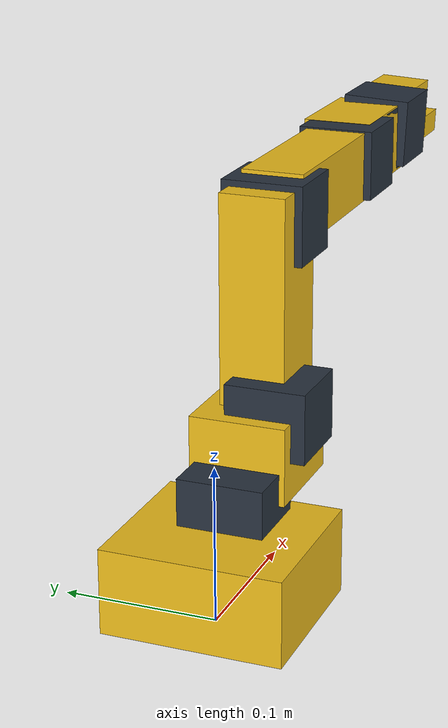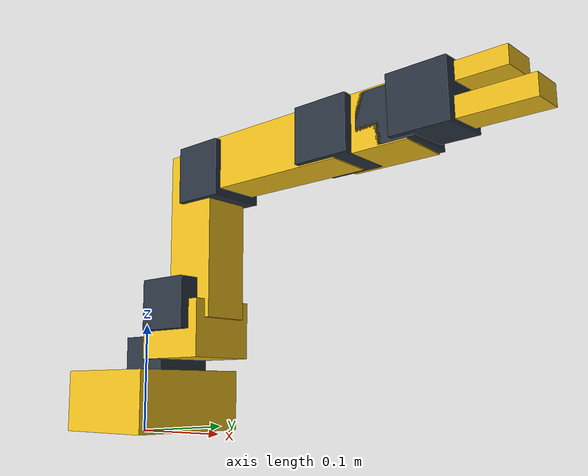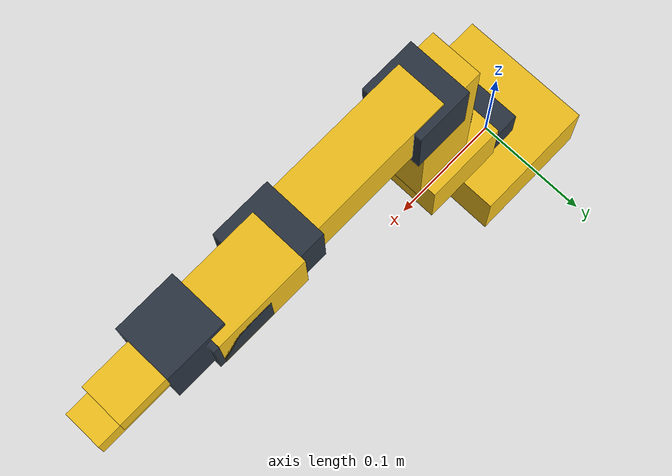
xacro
<?xml version="1.0"?>
<robot xmlns:xacro="http://www.ros.org/wiki/xacro" name="so_arm101">

  <xacro:arg name="hardware_type" default="mock"/>
  <xacro:arg name="usb_port"      default="/dev/ttyACM0"/>
  <xacro:arg name="baud_rate"     default="1000000"/>
  <xacro:arg name="prefix"        default=""/>

  <!-- 세계 좌표계 (Gazebo 에서 팔을 고정하기 위해 필요) -->
  <link name="world"/>

  <!-- 기구 구조 -->
  <xacro:include filename="$(find so_arm101_description)/urdf/so101_macro.xacro"/>
  <xacro:so_arm101 prefix="$(arg prefix)" parent="world">
    <origin xyz="0 0 0" rpy="0 0 0"/>
  </xacro:so_arm101>

  <!-- ros2_control 하드웨어 인터페이스 -->
  <xacro:include filename="$(find so_arm101_description)/urdf/so101.ros2_control.xacro"/>
  <xacro:so_arm101_ros2_control
      name="SOArm101System"
      prefix="$(arg prefix)"
      hardware_type="$(arg hardware_type)"
      usb_port="$(arg usb_port)"
      baud_rate="$(arg baud_rate)"/>

  <!-- Gazebo 전용 설정 -->
  <xacro:include filename="$(find so_arm101_description)/urdf/so101.gazebo.xacro"/>
  <xacro:so_arm101_gazebo hardware_type="$(arg hardware_type)" prefix="$(arg prefix)"/>

</robot>

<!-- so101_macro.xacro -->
<!-- 자동 생성 파일 — 수정하려면 ros2_ws/gen_macro.py 를 고치고 다시 실행하세요. -->
<!-- 조인트 수치는 TheRobotStudio/SO-ARM100 의 so101_new_calib.urdf 원본과 동일합니다. -->
<robot xmlns:xacro="http://www.ros.org/wiki/xacro">

  <material name="printed"><color rgba="0.94 0.75 0.11 1.0"/></material>
  <material name="servo"><color rgba="0.16 0.20 0.25 1.0"/></material>

  <xacro:macro name="so_arm101" params="prefix:='' parent:=world *origin">

    <joint name="${prefix}base_joint" type="fixed">
      <xacro:insert_block name="origin"/>
      <parent link="${parent}"/>
      <child  link="${prefix}base_link"/>
    </joint>

  <link name="${prefix}base_link">
    <inertial>
      <origin xyz="0.012 0 0.028" rpy="0 0 0"/>
      <mass value="0.147"/>
      <inertia ixx="1.990625e-04" ixy="0" ixz="0" iyy="1.721125e-04" iyz="0" izz="2.970625e-04"/>
    </inertial>
    <visual>
      <origin xyz="0.012 0 0.028" rpy="0 0 0"/>
      <geometry><box size="0.105 0.115 0.055"/></geometry>
      <material name="printed"/>
    </visual>
    <collision>
      <origin xyz="0.012 0 0.028" rpy="0 0 0"/>
      <geometry><box size="0.105 0.115 0.055"/></geometry>
    </collision>
    <visual>
      <origin xyz="0.03 0 0.06" rpy="0 0 0"/>
      <geometry><box size="0.048 0.055 0.052"/></geometry>
      <material name="servo"/>
    </visual>
    <collision>
      <origin xyz="0.03 0 0.06" rpy="0 0 0"/>
      <geometry><box size="0.048 0.055 0.052"/></geometry>
    </collision>
  </link>

  <link name="${prefix}shoulder_link">
    <inertial>
      <origin xyz="-0.03 0 -0.028" rpy="0 0 0"/>
      <mass value="0.1"/>
      <inertia ixx="5.286667e-05" ixy="0" ixz="0" iyy="6.166667e-05" iyz="0" izz="7.286667e-05"/>
    </inertial>
    <visual>
      <origin xyz="-0.03 0 -0.028" rpy="0 0 0"/>
      <geometry><box size="0.07 0.062 0.05"/></geometry>
      <material name="printed"/>
    </visual>
    <collision>
      <origin xyz="-0.03 0 -0.028" rpy="0 0 0"/>
      <geometry><box size="0.07 0.062 0.05"/></geometry>
    </collision>
    <visual>
      <origin xyz="-0.03 -0.014 -0.05" rpy="0 0 0"/>
      <geometry><box size="0.05 0.052 0.045"/></geometry>
      <material name="servo"/>
    </visual>
    <collision>
      <origin xyz="-0.03 -0.014 -0.05" rpy="0 0 0"/>
      <geometry><box size="0.05 0.052 0.045"/></geometry>
    </collision>
  </link>

  <link name="${prefix}upper_arm_link">
    <inertial>
      <origin xyz="-0.058 -0.014 0.018" rpy="0 0 0"/>
      <mass value="0.103"/>
      <inertia ixx="3.659933e-05" ixy="0" ixz="0" iyy="2.082660e-04" iyz="0" izz="2.145833e-04"/>
    </inertial>
    <visual>
      <origin xyz="-0.058 -0.014 0.018" rpy="0 0 0"/>
      <geometry><box size="0.15 0.05 0.042"/></geometry>
      <material name="printed"/>
    </visual>
    <collision>
      <origin xyz="-0.058 -0.014 0.018" rpy="0 0 0"/>
      <geometry><box size="0.15 0.05 0.042"/></geometry>
    </collision>
    <visual>
      <origin xyz="-0.112 -0.028 0.018" rpy="0 0 0"/>
      <geometry><box size="0.05 0.046 0.052"/></geometry>
      <material name="servo"/>
    </visual>
    <collision>
      <origin xyz="-0.112 -0.028 0.018" rpy="0 0 0"/>
      <geometry><box size="0.05 0.046 0.052"/></geometry>
    </collision>
  </link>

  <link name="${prefix}lower_arm_link">
    <inertial>
      <origin xyz="-0.07 0.004 0.018" rpy="0 0 0"/>
      <mass value="0.104"/>
      <inertia ixx="3.220533e-05" ixy="0" ixz="0" iyy="2.088667e-04" iyz="0" izz="2.133387e-04"/>
    </inertial>
    <visual>
      <origin xyz="-0.07 0.004 0.018" rpy="0 0 0"/>
      <geometry><box size="0.15 0.046 0.04"/></geometry>
      <material name="printed"/>
    </visual>
    <collision>
      <origin xyz="-0.07 0.004 0.018" rpy="0 0 0"/>
      <geometry><box size="0.15 0.046 0.04"/></geometry>
    </collision>
    <visual>
      <origin xyz="-0.135 0.005 0.018" rpy="0 0 0"/>
      <geometry><box size="0.048 0.046 0.05"/></geometry>
      <material name="servo"/>
    </visual>
    <collision>
      <origin xyz="-0.135 0.005 0.018" rpy="0 0 0"/>
      <geometry><box size="0.048 0.046 0.05"/></geometry>
    </collision>
  </link>

  <link name="${prefix}wrist_link">
    <inertial>
      <origin xyz="0 -0.034 0.024" rpy="0 0 0"/>
      <mass value="0.079"/>
      <inertia ixx="5.096158e-05" ixy="0" ixz="0" iyy="2.786067e-05" iyz="0" izz="5.096158e-05"/>
    </inertial>
    <visual>
      <origin xyz="0 -0.034 0.024" rpy="0 0 0"/>
      <geometry><box size="0.046 0.075 0.046"/></geometry>
      <material name="printed"/>
    </visual>
    <collision>
      <origin xyz="0 -0.034 0.024" rpy="0 0 0"/>
      <geometry><box size="0.046 0.075 0.046"/></geometry>
    </collision>
    <visual>
      <origin xyz="0 -0.052 0.024" rpy="0 0 0"/>
      <geometry><box size="0.044 0.048 0.046"/></geometry>
      <material name="servo"/>
    </visual>
    <collision>
      <origin xyz="0 -0.052 0.024" rpy="0 0 0"/>
      <geometry><box size="0.044 0.048 0.046"/></geometry>
    </collision>
  </link>

  <link name="${prefix}gripper_link">
    <inertial>
      <origin xyz="0.004 0 -0.022" rpy="0 0 0"/>
      <mass value="0.087"/>
      <inertia ixx="3.204500e-05" ixy="0" ixz="0" iyy="3.204500e-05" iyz="0" izz="3.068200e-05"/>
    </inertial>
    <visual>
      <origin xyz="0.004 0 -0.022" rpy="0 0 0"/>
      <geometry><box size="0.046 0.046 0.048"/></geometry>
      <material name="servo"/>
    </visual>
    <collision>
      <origin xyz="0.004 0 -0.022" rpy="0 0 0"/>
      <geometry><box size="0.046 0.046 0.048"/></geometry>
    </collision>
    <visual>
      <origin xyz="-0.008 0 -0.068" rpy="0 0 0"/>
      <geometry><box size="0.016 0.03 0.07"/></geometry>
      <material name="printed"/>
    </visual>
    <collision>
      <origin xyz="-0.008 0 -0.068" rpy="0 0 0"/>
      <geometry><box size="0.016 0.03 0.07"/></geometry>
    </collision>
  </link>

  <link name="${prefix}moving_jaw_so101_v1_link">
    <inertial>
      <origin xyz="-0.002 -0.03 0.014" rpy="0 0 0"/>
      <mass value="0.012"/>
      <inertia ixx="5.000000e-06" ixy="0" ixz="0" iyy="1.352000e-06" iyz="0" izz="4.040000e-06"/>
    </inertial>
    <visual>
      <origin xyz="-0.002 -0.03 0.014" rpy="0 0 0"/>
      <geometry><box size="0.014 0.062 0.034"/></geometry>
      <material name="printed"/>
    </visual>
    <collision>
      <origin xyz="-0.002 -0.03 0.014" rpy="0 0 0"/>
      <geometry><box size="0.014 0.062 0.034"/></geometry>
    </collision>
  </link>

  <!-- 서보 ID 1 -->
  <joint name="${prefix}shoulder_pan" type="revolute">
    <origin xyz="0.0388353 0 0.0624" rpy="3.14159 0 -3.14159"/>
    <parent link="${prefix}base_link"/>
    <child  link="${prefix}shoulder_link"/>
    <axis xyz="0 0 1"/>
    <limit effort="10" velocity="3.0" lower="-1.91986" upper="1.91986"/>
    <dynamics damping="0.1" friction="0.05"/>
  </joint>

  <!-- 서보 ID 2 -->
  <joint name="${prefix}shoulder_lift" type="revolute">
    <origin xyz="-0.0303992 -0.0182778 -0.0542" rpy="-1.5708 -1.5708 0"/>
    <parent link="${prefix}shoulder_link"/>
    <child  link="${prefix}upper_arm_link"/>
    <axis xyz="0 0 1"/>
    <limit effort="10" velocity="3.0" lower="-1.74533" upper="1.74533"/>
    <dynamics damping="0.1" friction="0.05"/>
  </joint>

  <!-- 서보 ID 3 -->
  <joint name="${prefix}elbow_flex" type="revolute">
    <origin xyz="-0.11257 -0.028 0" rpy="0 0 1.5708"/>
    <parent link="${prefix}upper_arm_link"/>
    <child  link="${prefix}lower_arm_link"/>
    <axis xyz="0 0 1"/>
    <limit effort="10" velocity="3.0" lower="-1.69" upper="1.69"/>
    <dynamics damping="0.1" friction="0.05"/>
  </joint>

  <!-- 서보 ID 4 -->
  <joint name="${prefix}wrist_flex" type="revolute">
    <origin xyz="-0.1349 0.0052 0" rpy="0 0 -1.5708"/>
    <parent link="${prefix}lower_arm_link"/>
    <child  link="${prefix}wrist_link"/>
    <axis xyz="0 0 1"/>
    <limit effort="10" velocity="3.0" lower="-1.65806" upper="1.65806"/>
    <dynamics damping="0.1" friction="0.05"/>
  </joint>

  <!-- 서보 ID 5 -->
  <joint name="${prefix}wrist_roll" type="revolute">
    <origin xyz="0 -0.0611 0.0181" rpy="1.5708 0.0486795 3.14159"/>
    <parent link="${prefix}wrist_link"/>
    <child  link="${prefix}gripper_link"/>
    <axis xyz="0 0 1"/>
    <limit effort="10" velocity="3.0" lower="-2.74385" upper="2.84121"/>
    <dynamics damping="0.1" friction="0.05"/>
  </joint>

  <!-- 서보 ID 6 -->
  <joint name="${prefix}gripper" type="revolute">
    <origin xyz="0.0202 0.0188 -0.0234" rpy="1.5708 0 0"/>
    <parent link="${prefix}gripper_link"/>
    <child  link="${prefix}moving_jaw_so101_v1_link"/>
    <axis xyz="0 0 1"/>
    <limit effort="10" velocity="3.0" lower="-0.174533" upper="1.74533"/>
    <dynamics damping="0.1" friction="0.05"/>
  </joint>

  <!-- TCP(툴 중심점) — MoveIt 의 엔드 이펙터 링크 -->
  <link name="${prefix}gripper_frame_link"/>
  <joint name="${prefix}gripper_frame_joint" type="fixed">
    <origin xyz="-0.0079 -0.000218121 -0.0981274" rpy="0 3.14159 0"/>
    <parent link="${prefix}gripper_link"/>
    <child  link="${prefix}gripper_frame_link"/>
  </joint>

  </xacro:macro>
</robot>
